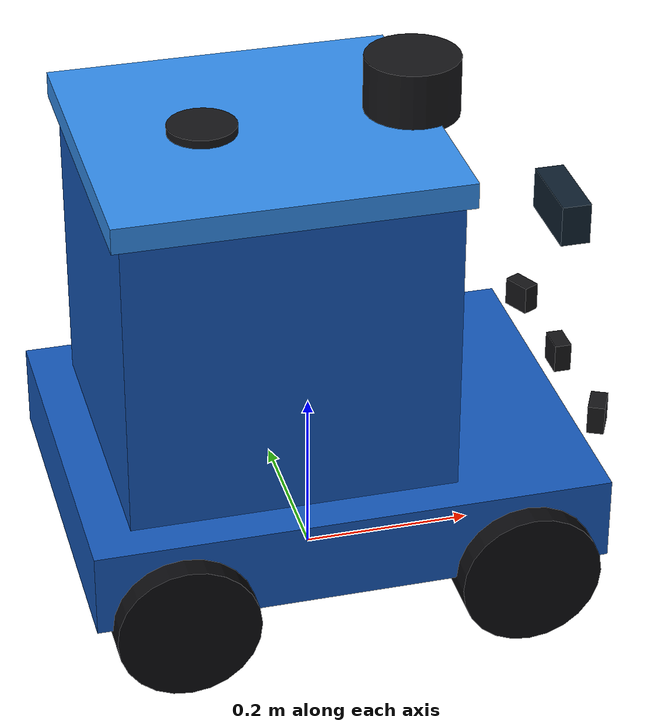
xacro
<?xml version="1.0"?>
<robot xmlns:xacro="http://www.ros.org/wiki/xacro" name="bioshuttle">

  <!-- Keep these dimensions aligned with the real chassis description. -->
  <xacro:property name="PI_VALUE" value="3.141592653589793"/>
  <xacro:property name="base_length" value="0.60"/>
  <xacro:property name="base_width" value="0.45"/>
  <xacro:property name="base_height" value="0.10"/>
  <xacro:property name="base_mass" value="10.0"/>
  <xacro:property name="wheel_radius" value="0.0825"/>
  <xacro:property name="wheel_width" value="0.055"/>
  <xacro:property name="wheel_mass" value="1.5"/>
  <xacro:property name="axle_x" value="0.20"/>
  <xacro:property name="axle_y" value="0.225"/>

  <material name="bioshuttle_blue"><color rgba="0.08 0.34 0.72 1"/></material>
  <material name="lid_blue"><color rgba="0.20 0.55 0.92 1"/></material>
  <material name="dark"><color rgba="0.04 0.04 0.05 1"/></material>
  <material name="sensor_black"><color rgba="0.08 0.08 0.09 1"/></material>
  <material name="camera_glass"><color rgba="0.05 0.12 0.18 1"/></material>

  <xacro:macro name="box_inertia" params="mass x y z">
    <inertial>
      <mass value="${mass}"/>
      <origin xyz="0 0 0"/>
      <inertia
        ixx="${mass * (y*y + z*z) / 12.0}" ixy="0" ixz="0"
        iyy="${mass * (x*x + z*z) / 12.0}" iyz="0"
        izz="${mass * (x*x + y*y) / 12.0}"/>
    </inertial>
  </xacro:macro>

  <xacro:macro name="wheel_inertia" params="mass radius width">
    <inertial>
      <mass value="${mass}"/>
      <origin xyz="0 0 0"/>
      <inertia
        ixx="${mass * (3*radius*radius + width*width) / 12.0}" ixy="0" ixz="0"
        iyy="${mass * radius*radius / 2.0}" iyz="0"
        izz="${mass * (3*radius*radius + width*width) / 12.0}"/>
    </inertial>
  </xacro:macro>

  <link name="base_footprint"/>

  <joint name="base_footprint_joint" type="fixed">
    <parent link="base_footprint"/>
    <child link="base_link"/>
    <origin xyz="0 0 ${wheel_radius}"/>
  </joint>

  <link name="base_link">
    <visual>
      <origin xyz="0 0 ${base_height/2}"/>
      <geometry><box size="${base_length} ${base_width} ${base_height}"/></geometry>
      <material name="bioshuttle_blue"/>
    </visual>
    <collision>
      <origin xyz="0 0 ${base_height/2}"/>
      <geometry><box size="${base_length} ${base_width} ${base_height}"/></geometry>
    </collision>
    <xacro:box_inertia mass="${base_mass}" x="${base_length}" y="${base_width}" z="${base_height}"/>
  </link>

  <!-- Insulated cargo box and lid are visualized now; actuator simulation can be added later. -->
  <link name="cargo_box_link">
    <visual>
      <geometry><box size="0.38 0.36 0.36"/></geometry>
      <material name="bioshuttle_blue"/>
    </visual>
    <collision>
      <geometry><box size="0.38 0.36 0.36"/></geometry>
    </collision>
    <xacro:box_inertia mass="5.0" x="0.38" y="0.36" z="0.36"/>
  </link>
  <joint name="cargo_box_joint" type="fixed">
    <parent link="base_link"/>
    <child link="cargo_box_link"/>
    <origin xyz="-0.06 0 0.28"/>
  </joint>

  <link name="lid_link">
    <visual>
      <geometry><box size="0.40 0.38 0.03"/></geometry>
      <material name="lid_blue"/>
    </visual>
    <collision>
      <geometry><box size="0.40 0.38 0.03"/></geometry>
    </collision>
    <xacro:box_inertia mass="0.8" x="0.40" y="0.38" z="0.03"/>
  </link>
  <joint name="lid_joint" type="fixed">
    <parent link="base_link"/>
    <child link="lid_link"/>
    <origin xyz="-0.06 0 0.475"/>
  </joint>

  <xacro:macro name="wheel" params="name x y">
    <link name="${name}_wheel_link">
      <visual>
        <origin rpy="${PI_VALUE/2} 0 0"/>
        <geometry><cylinder radius="${wheel_radius}" length="${wheel_width}"/></geometry>
        <material name="dark"/>
      </visual>
      <collision>
        <origin rpy="${PI_VALUE/2} 0 0"/>
        <geometry><cylinder radius="${wheel_radius}" length="${wheel_width}"/></geometry>
      </collision>
      <xacro:wheel_inertia mass="${wheel_mass}" radius="${wheel_radius}" width="${wheel_width}"/>
    </link>
    <joint name="${name}_wheel_joint" type="continuous">
      <parent link="base_link"/>
      <child link="${name}_wheel_link"/>
      <origin xyz="${x} ${y} 0"/>
      <axis xyz="0 1 0"/>
      <dynamics damping="0.15" friction="0.05"/>
    </joint>
  </xacro:macro>

  <xacro:wheel name="left" x="${axle_x}" y="${axle_y}"/>
  <xacro:wheel name="right" x="${axle_x}" y="${-axle_y}"/>
  <xacro:wheel name="rear_left" x="${-axle_x}" y="${axle_y}"/>
  <xacro:wheel name="rear_right" x="${-axle_x}" y="${-axle_y}"/>

  <link name="lidar_link">
    <visual>
      <geometry><cylinder radius="0.055" length="0.07"/></geometry>
      <material name="sensor_black"/>
    </visual>
    <xacro:box_inertia mass="0.15" x="0.10" y="0.10" z="0.07"/>
  </link>
  <joint name="lidar_joint" type="fixed">
    <parent link="base_link"/>
    <child link="lidar_link"/>
    <origin xyz="0.12 0 0.52"/>
  </joint>

  <link name="camera_link">
    <visual>
      <geometry><box size="0.035 0.10 0.05"/></geometry>
      <material name="camera_glass"/>
    </visual>
    <xacro:box_inertia mass="0.10" x="0.035" y="0.10" z="0.05"/>
  </link>
  <joint name="camera_joint" type="fixed">
    <parent link="base_link"/>
    <child link="camera_link"/>
    <origin xyz="0.305 0 0.34"/>
  </joint>
  <link name="camera_optical_frame"/>
  <joint name="camera_optical_joint" type="fixed">
    <parent link="camera_link"/>
    <child link="camera_optical_frame"/>
    <origin xyz="0 0 0" rpy="${-PI_VALUE/2} 0 ${-PI_VALUE/2}"/>
  </joint>

  <link name="imu_link">
    <visual>
      <geometry><box size="0.04 0.04 0.02"/></geometry>
      <material name="sensor_black"/>
    </visual>
    <xacro:box_inertia mass="0.05" x="0.04" y="0.04" z="0.02"/>
  </link>
  <joint name="imu_joint" type="fixed">
    <parent link="base_link"/>
    <child link="imu_link"/>
    <origin xyz="0 0 0.13"/>
  </joint>

  <link name="gps_link">
    <visual>
      <geometry><cylinder radius="0.04" length="0.02"/></geometry>
      <material name="sensor_black"/>
    </visual>
    <xacro:box_inertia mass="0.05" x="0.08" y="0.08" z="0.02"/>
  </link>
  <joint name="gps_joint" type="fixed">
    <parent link="base_link"/>
    <child link="gps_link"/>
    <origin xyz="-0.12 0 0.49"/>
  </joint>

  <xacro:macro name="range_sensor" params="name y yaw">
    <link name="${name}_range_link">
      <visual>
        <geometry><box size="0.02 0.035 0.035"/></geometry>
        <material name="sensor_black"/>
      </visual>
      <xacro:box_inertia mass="0.02" x="0.02" y="0.035" z="0.035"/>
    </link>
    <joint name="${name}_range_joint" type="fixed">
      <parent link="base_link"/>
      <child link="${name}_range_link"/>
      <origin xyz="0.31 ${y} 0.14" rpy="0 0 ${yaw}"/>
    </joint>
    <gazebo reference="${name}_range_link">
      <sensor name="${name}_range" type="ray">
        <always_on>true</always_on>
        <visualize>false</visualize>
        <update_rate>20</update_rate>
        <ray>
          <scan><horizontal><samples>7</samples><resolution>1</resolution><min_angle>-0.20</min_angle><max_angle>0.20</max_angle></horizontal></scan>
          <range><min>0.08</min><max>3.0</max><resolution>0.01</resolution></range>
          <noise><type>gaussian</type><mean>0</mean><stddev>0.01</stddev></noise>
        </ray>
        <plugin name="${name}_range_plugin" filename="libgazebo_ros_ray_sensor.so">
          <ros><remapping>~/out:=/range/${name}</remapping></ros>
          <output_type>sensor_msgs/Range</output_type>
          <radiation_type>ultrasound</radiation_type>
          <frame_name>${name}_range_link</frame_name>
        </plugin>
      </sensor>
    </gazebo>
  </xacro:macro>

  <xacro:range_sensor name="front" y="0" yaw="0"/>
  <xacro:range_sensor name="front_left" y="0.14" yaw="0.45"/>
  <xacro:range_sensor name="front_right" y="-0.14" yaw="-0.45"/>

  <gazebo reference="base_link"><material>Gazebo/Blue</material></gazebo>
  <gazebo reference="cargo_box_link"><material>Gazebo/Blue</material></gazebo>
  <gazebo reference="lid_link"><material>Gazebo/SkyBlue</material></gazebo>

  <xacro:macro name="wheel_gazebo" params="name">
    <gazebo reference="${name}_wheel_link">
      <material>Gazebo/Black</material>
      <mu1>1.0</mu1><mu2>0.35</mu2><kp>1000000</kp><kd>10</kd>
    </gazebo>
  </xacro:macro>
  <xacro:wheel_gazebo name="left"/>
  <xacro:wheel_gazebo name="right"/>
  <xacro:wheel_gazebo name="rear_left"/>
  <xacro:wheel_gazebo name="rear_right"/>

  <gazebo reference="lidar_link">
    <sensor name="lidar" type="ray">
      <always_on>true</always_on><visualize>true</visualize><update_rate>15</update_rate>
      <pose>0 0 0 0 0 0</pose>
      <ray>
        <scan><horizontal><samples>720</samples><resolution>1</resolution><min_angle>-${PI_VALUE}</min_angle><max_angle>${PI_VALUE}</max_angle></horizontal></scan>
        <range><min>0.12</min><max>20.0</max><resolution>0.01</resolution></range>
        <noise><type>gaussian</type><mean>0</mean><stddev>0.008</stddev></noise>
      </ray>
      <plugin name="lidar_plugin" filename="libgazebo_ros_ray_sensor.so">
        <ros><remapping>~/out:=/scan</remapping></ros>
        <output_type>sensor_msgs/LaserScan</output_type>
        <frame_name>lidar_link</frame_name>
      </plugin>
    </sensor>
  </gazebo>

  <gazebo reference="camera_link">
    <sensor name="front_camera" type="camera">
      <always_on>true</always_on><visualize>true</visualize><update_rate>15</update_rate>
      <camera name="front_camera">
        <horizontal_fov>1.396</horizontal_fov>
        <image><width>640</width><height>480</height><format>R8G8B8</format></image>
        <clip><near>0.05</near><far>40.0</far></clip>
        <noise><type>gaussian</type><mean>0</mean><stddev>0.004</stddev></noise>
      </camera>
      <plugin name="camera_plugin" filename="libgazebo_ros_camera.so">
        <ros><namespace>/camera/color</namespace></ros>
        <camera_name>front_camera</camera_name>
        <frame_name>camera_optical_frame</frame_name>
      </plugin>
    </sensor>
  </gazebo>

  <gazebo reference="imu_link">
    <sensor name="imu" type="imu">
      <always_on>true</always_on><visualize>false</visualize><update_rate>100</update_rate>
      <imu>
        <angular_velocity>
          <x><noise type="gaussian"><mean>0</mean><stddev>0.0002</stddev></noise></x>
          <y><noise type="gaussian"><mean>0</mean><stddev>0.0002</stddev></noise></y>
          <z><noise type="gaussian"><mean>0</mean><stddev>0.0002</stddev></noise></z>
        </angular_velocity>
        <linear_acceleration>
          <x><noise type="gaussian"><mean>0</mean><stddev>0.017</stddev></noise></x>
          <y><noise type="gaussian"><mean>0</mean><stddev>0.017</stddev></noise></y>
          <z><noise type="gaussian"><mean>0</mean><stddev>0.017</stddev></noise></z>
        </linear_acceleration>
      </imu>
      <plugin name="imu_plugin" filename="libgazebo_ros_imu_sensor.so">
        <ros><remapping>~/out:=/imu/data</remapping></ros>
        <initial_orientation_as_reference>false</initial_orientation_as_reference>
        <frame_name>imu_link</frame_name>
      </plugin>
    </sensor>
  </gazebo>

  <!-- Two wheel pairs model the real four-wheel chassis driven by one motor per side. -->
  <gazebo>
    <plugin name="bioshuttle_diff_drive" filename="libgazebo_ros_diff_drive.so">
      <ros><namespace>/</namespace></ros>
      <update_rate>50</update_rate>
      <num_wheel_pairs>2</num_wheel_pairs>
      <left_joint>left_wheel_joint</left_joint>
      <right_joint>right_wheel_joint</right_joint>
      <left_joint>rear_left_wheel_joint</left_joint>
      <right_joint>rear_right_wheel_joint</right_joint>
      <wheel_separation>${2*axle_y}</wheel_separation>
      <wheel_separation>${2*axle_y}</wheel_separation>
      <wheel_diameter>${2*wheel_radius}</wheel_diameter>
      <wheel_diameter>${2*wheel_radius}</wheel_diameter>
      <max_wheel_torque>55.0</max_wheel_torque>
      <max_wheel_acceleration>2.0</max_wheel_acceleration>
      <odometry_frame>odom</odometry_frame>
      <robot_base_frame>base_footprint</robot_base_frame>
      <odometry_source>1</odometry_source>
      <publish_odom>true</publish_odom>
      <publish_odom_tf>true</publish_odom_tf>
      <publish_wheel_tf>false</publish_wheel_tf>
    </plugin>

    <plugin name="joint_state_publisher" filename="libgazebo_ros_joint_state_publisher.so">
      <ros><namespace>/</namespace></ros>
      <update_rate>30</update_rate>
      <joint_name>left_wheel_joint</joint_name>
      <joint_name>right_wheel_joint</joint_name>
      <joint_name>rear_left_wheel_joint</joint_name>
      <joint_name>rear_right_wheel_joint</joint_name>
    </plugin>
  </gazebo>

</robot>
